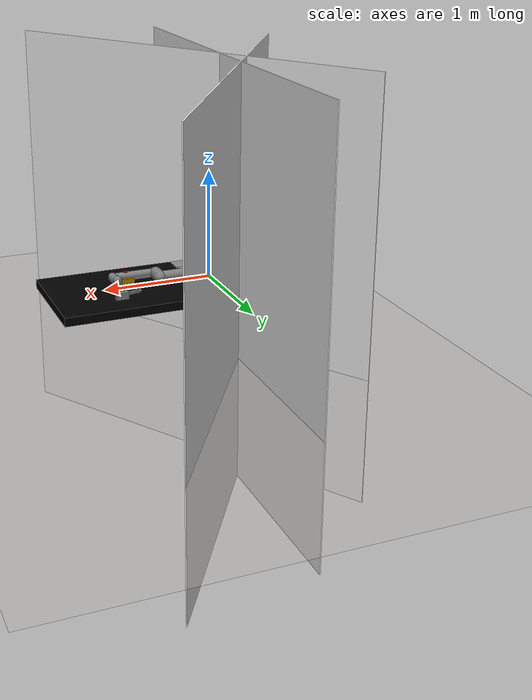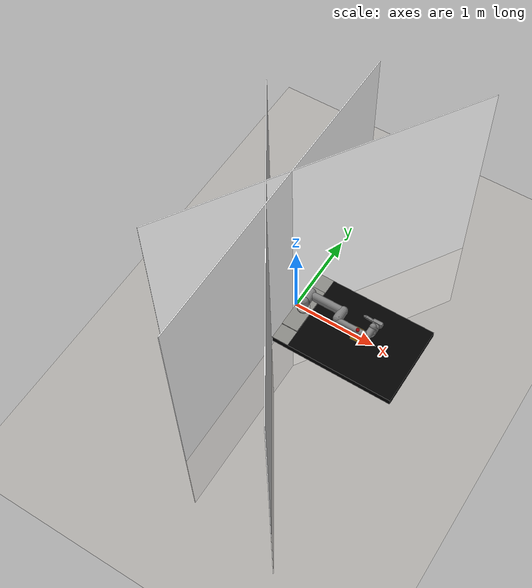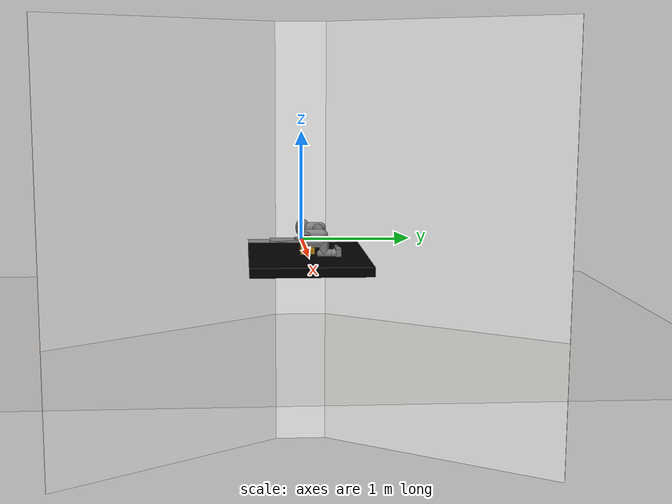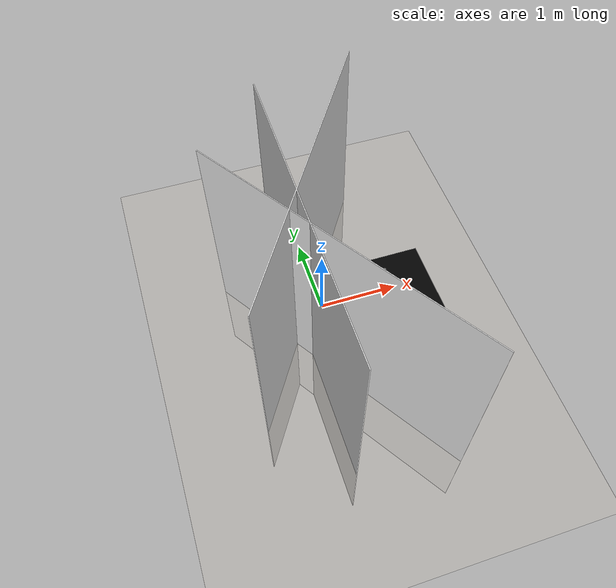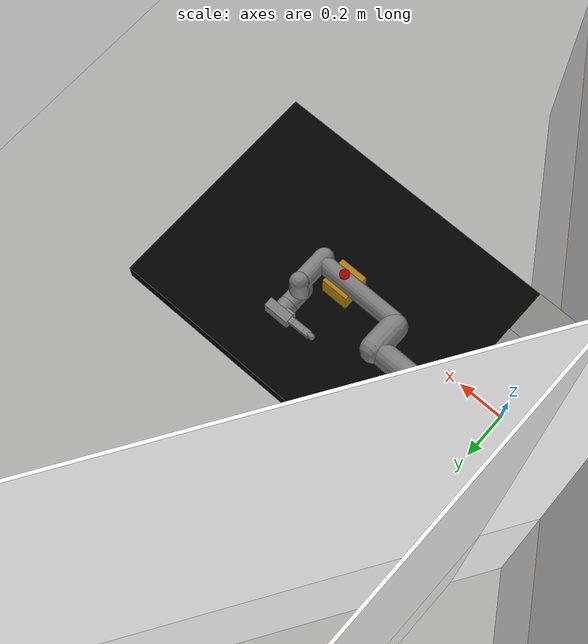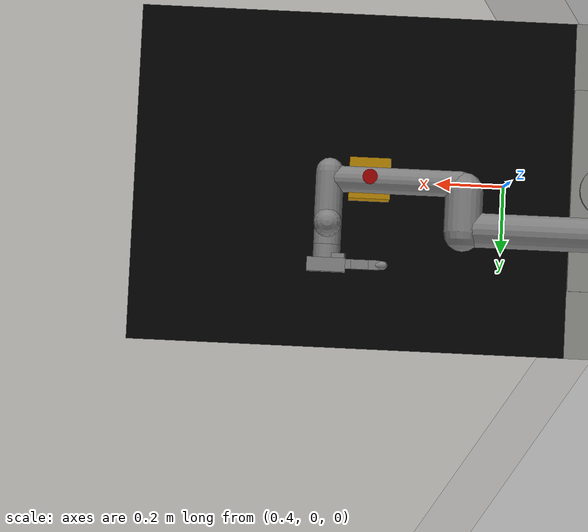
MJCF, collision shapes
<mujoco model="ur5e_button_scene">

  <include file="basic_scene.xml"/>
  <include file="ur5e_with_dex.xml"/>

  <default>
    <default class="buttonbox_base">
        <joint armature="0.001" damping="2" limited="true"/>
        <position ctrllimited="true" ctrlrange="0 1.57"/>
    </default>
  </default>

  <asset>
    <material name="btn_red" rgba=".6 0 0 1" shininess="1" reflectance=".7" specular=".5"/>
    <material name="btn_yellow" rgba=".7 .5 0 1" shininess="1" reflectance=".7" specular=".5"/>
  </asset>

  <worldbody>

    <body childclass="buttonbox_base" name="buttonbox" pos="0.8 0 0.058" euler="-1.57 0 0">

      <geom material="btn_yellow" pos="0 0.006 0.036" size="0.06 0.051 0.024" type="box"/>
      <geom material="btn_yellow" pos="0 0.006 -0.036" size="0.06 0.051 0.024" type="box"/>
      <geom material="btn_yellow" pos="-0.0365 0.006 0" size="0.0235 0.051 0.012" type="box"/>
      <geom material="btn_yellow" pos="0.0365 0.006 0" size="0.0235 0.051 0.012" type="box"/>

      <site name="hover_site" pos="0 -0.18 0" size="0.02" rgba="0 1 0 0"/>
      <site name="btn_site" pos="0 -0.055 0" size="0.02" rgba="0 0 1 0"/>

      <body childclass="buttonbox_base" name="button">
        <inertial pos="0 -0.09675 0" mass=".01" diaginertia="0.001 0.001 0.001"/>
        <joint name="btnbox_joint" pos="0 0 0" axis="0 -1 0" type="slide" springref=".5" limited="true" stiffness="0.5" range="-0.03 0" damping="0.5"/>

        <geom material="btn_red" euler="1.57 0 0" pos="0 -0.064 0" size="0.0105 0.0235" type="cylinder"/>
        <geom material="btn_red" euler="1.57 0 0" pos="0 -0.0915 0" size="0.0215 0.0055" type="cylinder"/>

        <site name="pushdown_site" pos="0 -0.09 0" size="0.02" rgba="0 1 0 0"/>
      </body>

    </body>

  </worldbody>

</mujoco>

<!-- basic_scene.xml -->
<mujoco model="ur5e_scene">

  <compiler angle="radian" meshdir="assets" texturedir="assets" autolimits="true"/>

  <statistic center="0.3 0 0.4" extent="0.8"/>

  <visual>
    <headlight diffuse="0.6 0.6 0.6"  ambient="0.1 0.1 0.1" specular="0 0 0"/>
    <rgba haze="0.15 0.25 0.35 1"/>
    <global azimuth="120" elevation="-20"/>
  </visual>

  <default>
    <default class="visual_scene">
      <geom contype="0" conaffinity="0"/>
    </default>
  </default>

  <asset>
    <mesh name="table_top" scale="1.25 1.67 10" file="table_top.STL"/>
    <mesh name="table_leg" scale="1.25 1.67 1" file="table_leg.STL"/>
    <texture type="2d" name="floor" file="floor.png" />
    <texture type="skybox" builtin="gradient" rgb1="0.3 0.5 0.7" rgb2="0 0 0" width="512"
        height="3072"/>
    <texture type="2d" name="groundplane" builtin="checker" mark="edge" rgb1="0.2 0.3 0.4"
        rgb2="0.1 0.2 0.3" markrgb="0.8 0.8 0.8" width="300" height="300"/>
    <texture name="grid" type="2d" builtin="checker" rgb1=".1 .2 .3" rgb2=".2 .3 .4"
        width="300" height="300" mark="edge" markrgb=".2 .3 .4"/>
    <material name="groundplane" texture="groundplane" texuniform="true" texrepeat="5 5"
        reflectance="0.2"/>
    <material name="grid" texture="grid" texrepeat="1 1" texuniform="true" reflectance=".2"/>
    <material name="table" rgba="0.12 0.3 0.26 1"/>
    <material name="floor" texture="floor"/>
    <material name="seat_mat" rgba="0.533 0.529 0.514 1" specular="0.5" shininess="0.25"/>
    <material name="wall" rgba="1 1 1 1"/>
  </asset>

  <worldbody>
    <light pos="0.6 -0.1 1.5" dir="0 0.3 -1" directional="true" castshadow="false"/>

    <geom name="floor" size="0 0 0.05" pos="0 0 -0.75" type="plane" material="floor"/>

    <geom name="wall1" size="2 2 0.005" pos="-0.2 0 0" type="box" quat="0 1 0 1" material="wall"/>
    <geom name="wall2" size="2 2 0.005" pos="0 0.55 0" type="box" euler="1.57 1.0 0" material="wall"/>
    <geom name="wall3" size="2 2 0.005" pos="0 -0.55 0" type="box" euler="1.57 -1.0 0" material="wall"/>

    <!-- The desktop plane is at z=0, back edge is at x=0 -->
    <body name="table" pos="0.75 0 -0.04">
      <geom name="table_top_col" type="box" pos="0 0 0" size="0.75 0.5 0.04" rgba="0 0 0 0"/>
      <geom type="mesh" mesh="table_top" pos="0 0 -0.36" material="table" class="visual_scene"/>
      <geom type="mesh" mesh="table_leg" rgba="0.533 0.529 0.514 1" class="visual_scene"/>
      <body name='seat' pos="-0.65 0 0.04">
        <geom type="box" pos="0 0 0.0075" size="0.1 0.3 0.0075" material="seat_mat" class="visual_scene"/>
        <geom type="box" pos="0 0 0.001" size="0.1 0.5 0.001" material="seat_mat" class="visual_scene"/>
        <geom type="cylinder" pos="0 0 0.0225" size="0.075 0.0075" material="seat_mat" class="visual_scene"/>
      </body>

    </body>

    <body name="viewpoint" pos="0.6 0.0 0.2">
    </body>

    <camera name="fix_cam" mode="targetbody" target="viewpoint" pos="1.9 0 0.75" fovy="42"/>
    <camera name="track_cam" mode="targetbody" target="viewpoint" pos="1.9 0 0.75" fovy="42"/>

  </worldbody>

</mujoco>

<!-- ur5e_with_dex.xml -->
<mujoco model="ur5e">
  <compiler angle="radian" meshdir="assets" autolimits="true"/>

  <option cone="elliptic" impratio="10"/>

  <default>
    <default class="ur5e">
      <joint axis="0 1 0" range="-6.28319 6.28319"/>
      <position ctrlrange="-6.28319 6.28319"/>

      <default class="visual_ur5e">
        <geom type="mesh" contype="0" conaffinity="0" group="2"/>
      </default>
      <default class="collision_ur5e">
        <geom type="capsule" group="3"/>
        <default class="eef_collision">
          <geom type="cylinder"/>
        </default>
      </default>
      <site size="0.001" rgba="0.5 0.5 0.5 0.3" group="4"/>

      <!-- Reference:
        https://www.universal-robots.com/articles/ur/robot-care-maintenance/max-joint-torques/ -->
      <default class="size3">
        <joint armature="0.1" damping="200"/>
        <position kp="3500" forcerange="-150 150"/>
        <default class="size3_limited">
          <joint range="-3.1415 3.1415"/>
          <position ctrlrange="-3.1415 3.1415"/>
        </default>
      </default>
      <default class="size1">
        <joint armature="0.1" damping="15"/>
        <position kp="3000" forcerange="-28 28"/>
      </default>
    </default>

    <!-- dex -->
    <default class="allegro_left">
      <joint axis="0 1 0" damping=".1"/>
      <position kp="1"/>
      <geom density="800"/>

      <default class="visual">
        <geom type="mesh" contype="0" conaffinity="0" group="2" material="black"/>
        <default class="palm_visual">
          <geom mesh="base_link"/>
        </default>
        <default class="base_visual">
          <geom mesh="link_0.0"/>
        </default>
        <default class="proximal_visual">
          <geom mesh="link_1.0"/>
        </default>
        <default class="medial_visual">
          <geom mesh="link_2.0"/>
        </default>
        <default class="distal_visual">
          <geom mesh="link_3.0"/>
        </default>
        <default class="fingertip_visual">
          <geom pos="0 0 0.0267" material="white" mesh="link_3.0_tip"/>
        </default>
        <default class="thumbtip_visual">
          <geom pos="0 0 0.0423" material="white" mesh="link_15.0_tip"/>
        </default>
      </default>

      <default class="collision">
        <geom group="3" type="box" mass="0"/>
        <default class="palm_collision">
          <geom size="0.0204 0.0565 0.0475" pos="-0.0093 0 -0.0475"/>
        </default>
        <default class="base_collision">
          <geom size="0.0098 0.01375 0.0082" pos="0 0 0.0082"/>
          <default class="thumb_base_collision">
            <geom size="0.0179 0.017 0.02275" pos="-0.0179 0.009 0.0145"/>
          </default>
        </default>
        <default class="proximal_collision">
          <geom size="0.0098 0.01375 0.027" pos="0 0 0.027"/>
          <default class="thumb_proximal_collision">
            <geom size="0.0098 0.01375 0.00885" pos="0 0 0.00885"/>
          </default>
        </default>
        <default class="medial_collision">
          <geom size="0.0098 0.01375 0.0192" pos="0 0 0.0192"/>
          <default class="thumb_medial_collision">
            <geom size="0.0098 0.01375 0.0257" pos="0 0 0.0257"/>
          </default>
        </default>
        <default class="distal_collision">
          <geom size="0.0098 0.01375 0.008" pos="0 0 0.008"/>
          <default class="thumb_distal_collision">
            <geom size="0.0098 0.01375 0.0157" pos="0 0 0.0157"/>
          </default>
        </default>
        <default class="fingertip_collision">
          <geom type="capsule" size="0.012 0.01" pos="0 0 0.019"/>
          <default class="thumbtip_collision">
            <geom type="capsule" size="0.012 0.008" pos="0 0 0.035"/>
          </default>
        </default>
      </default>

      <default class="base">
        <joint axis="0 0 1" range="-0.47 0.47"/>
        <position ctrlrange="-0.47 0.47"/>
      </default>
      <default class="proximal">
        <joint range="-0.196 1.61"/>
        <position ctrlrange="-0.196 1.61"/>
      </default>
      <default class="medial">
        <joint range="-0.174 1.709"/>
        <position ctrlrange="-0.174 1.709"/>
      </default>
      <default class="distal">
        <joint range="-0.227 1.618"/>
        <position ctrlrange="-0.227 1.618"/>
      </default>
      <default class="thumb_base">
        <joint axis="1 0 0" range="0.263 1.396"/>
        <position ctrlrange="0.263 1.396"/>
      </default>
      <default class="thumb_proximal">
        <joint axis="0 0 -1" range="-0.105 1.163"/>
        <position ctrlrange="-0.105 1.163"/>
      </default>
      <default class="thumb_medial">
        <joint range="-0.189 1.644"/>
        <position ctrlrange="-0.189 1.644"/>
      </default>
      <default class="thumb_distal">
        <joint range="-0.162 1.719"/>
        <position ctrlrange="-0.162 1.719"/>
      </default>
    </default>

  </default>

  <asset>
    <material name="black_ur5e" specular="0.5" shininess="0.25" rgba="0.033 0.033 0.033 1"/>
    <material name="jointgray" specular="0.5" shininess="0.25" rgba="0.278 0.278 0.278 1"/>
    <material name="linkgray" specular="0.5" shininess="0.25" rgba="0.82 0.82 0.82 1"/>
    <material name="urblue" specular="0.5" shininess="0.25" rgba="0.49 0.678 0.8 1"/>
    <!-- dex -->
    <material name="black" rgba="0.2 0.2 0.2 1"/>
    <material name="white" rgba="0.9 0.9 0.9 1"/>

    <mesh file="base_0.obj"/>
    <mesh file="base_1.obj"/>
    <mesh file="shoulder_0.obj"/>
    <mesh file="shoulder_1.obj"/>
    <mesh file="shoulder_2.obj"/>
    <mesh file="upperarm_0.obj"/>
    <mesh file="upperarm_1.obj"/>
    <mesh file="upperarm_2.obj"/>
    <mesh file="upperarm_3.obj"/>
    <mesh file="forearm_0.obj"/>
    <mesh file="forearm_1.obj"/>
    <mesh file="forearm_2.obj"/>
    <mesh file="forearm_3.obj"/>
    <mesh file="wrist1_0.obj"/>
    <mesh file="wrist1_1.obj"/>
    <mesh file="wrist1_2.obj"/>
    <mesh file="wrist2_0.obj"/>
    <mesh file="wrist2_1.obj"/>
    <mesh file="wrist2_2.obj"/>
    <mesh file="wrist3.obj"/>
    <!-- dex -->
    <mesh file="base_link_left.stl"/>
    <mesh file="link_0.0.stl"/>
    <mesh file="link_1.0.stl"/>
    <mesh file="link_2.0.stl"/>
    <mesh file="link_3.0.stl"/>
    <mesh file="link_3.0_tip.stl"/>
    <mesh file="link_12.0_left.stl"/>
    <mesh file="link_13.0.stl"/>
    <mesh file="link_14.0.stl"/>
    <mesh file="link_15.0.stl"/>
    <mesh file="link_15.0_tip.stl"/>
  </asset>

  <worldbody>
    <body name="base_ur5e" quat="0 0 0 0" childclass="ur5e" pos="0.1 0 -0.05" gravcomp="1">
      <inertial mass="4.0" pos="0 0 0" diaginertia="0.00443333156 0.00443333156 0.0072"/>
      <geom mesh="base_0" material="black_ur5e" class="visual_ur5e"/>
      <body name="shoulder_link" pos="0 0 0.163" gravcomp="1">
        <inertial mass="3.7" pos="0 0 0" diaginertia="0.0102675 0.0102675 0.00666"/>
        <joint name="shoulder_pan_joint" class="size3" axis="0 0 1"/>
        <geom mesh="shoulder_0" material="urblue" class="visual_ur5e"/>
        <geom mesh="shoulder_1" material="black_ur5e" class="visual_ur5e"/>
        <geom mesh="shoulder_2" material="jointgray" class="visual_ur5e"/>
        <geom class="collision_ur5e" size="0.06 0.02" pos="0 0 0.01"/>
        <body name="upper_arm_link" pos="0 0.138 0" quat="1 0 1 0" gravcomp="1">
          <inertial mass="8.393" pos="0 0 0.2125" diaginertia="0.133886 0.133886 0.0151074"/>
          <joint name="shoulder_lift_joint" class="size3"/>
          <geom mesh="upperarm_0" material="linkgray" class="visual_ur5e"/>
          <geom mesh="upperarm_1" material="black_ur5e" class="visual_ur5e"/>
          <geom mesh="upperarm_2" material="jointgray" class="visual_ur5e"/>
          <geom mesh="upperarm_3" material="urblue" class="visual_ur5e"/>
          <geom class="collision_ur5e" pos="0 -0.04 0" quat="1 1 0 0" size="0.06 0.06"/>
          <geom class="collision_ur5e" size="0.05 0.2" pos="0 0 0.2"/>
          <body name="forearm_link" pos="0 -0.131 0.425" gravcomp="1">
            <inertial mass="2.275" pos="0 0 0.196" diaginertia="0.0311796 0.0311796 0.004095"/>
            <joint name="elbow_joint" class="size3_limited"/>
            <geom mesh="forearm_0" material="urblue" class="visual_ur5e"/>
            <geom mesh="forearm_1" material="linkgray" class="visual_ur5e"/>
            <geom mesh="forearm_2" material="black_ur5e" class="visual_ur5e"/>
            <geom mesh="forearm_3" material="jointgray" class="visual_ur5e"/>
            <geom class="collision_ur5e" pos="0 0.08 0" quat="1 1 0 0" size="0.055 0.06"/>
            <geom class="collision_ur5e" size="0.038 0.19" pos="0 0 0.2"/>
            <body name="wrist_1_link" pos="0 0 0.392" quat="1 0 1 0" gravcomp="1">
              <inertial mass="1.219" pos="0 0.127 0" diaginertia="0.0025599 0.0025599 0.0021942"/>
              <joint name="wrist_1_joint" class="size1"/>
              <geom mesh="wrist1_0" material="black_ur5e" class="visual_ur5e"/>
              <geom mesh="wrist1_1" material="urblue" class="visual_ur5e"/>
              <geom mesh="wrist1_2" material="jointgray" class="visual_ur5e"/>
              <geom class="collision_ur5e" pos="0 0.05 0" quat="1 1 0 0" size="0.04 0.07"/>
              <body name="wrist_2_link" pos="0 0.127 0" gravcomp="1">
                <inertial mass="1.219" pos="0 0 0.1" diaginertia="0.0025599 0.0025599 0.0021942"/>
                <joint name="wrist_2_joint" axis="0 0 1" class="size1"/>
                <geom mesh="wrist2_0" material="black_ur5e" class="visual_ur5e"/>
                <geom mesh="wrist2_1" material="urblue" class="visual_ur5e"/>
                <geom mesh="wrist2_2" material="jointgray" class="visual_ur5e"/>
                <geom class="collision_ur5e" size="0.04 0.06" pos="0 0 0.04"/>
                <geom class="collision_ur5e" pos="0 0.02 0.1" quat="1 1 0 0" size="0.04 0.04"/>
                <body name="wrist_3_link" pos="0 0 0.1" gravcomp="1">
                  <inertial mass="0.1889" pos="0 0.0771683 0" quat="1 0 0 1"
                      diaginertia="0.000132134 9.90863e-05 9.90863e-05"/>
                  <joint name="wrist_3_joint" class="size1"/>
                  <geom material="linkgray" mesh="wrist3" class="visual_ur5e"/>
                  <geom class="eef_collision" pos="0 0.08 0" quat="1 1 0 0" size="0.04 0.02"/>
                  <site name="attachment_site" pos="0 0.1 0" quat="-1 1 0 0"/>

                  <!-- Dexterous right hand Allegro -->
                  <!-- quat="0 1 0 1" -->
                  <body name="palm" pos="0 0.13 0.045" quat="1 0 0 1" childclass="allegro_left" gravcomp="1">
                    <site name="tcp_site" type="box" pos="0.04 0 -0.02" size="0.01 0.02 0.01" rgba="1 0 0 0"/>
                    <body name="tcp_center" pos="0.04 0 -0.02"/>
                    <geom quat="1 -1 0 0" class="palm_visual" mesh="base_link_left"/>
                    <geom class="palm_collision"/>
                    <!-- Ring finger -->
                    <body name="rf_base" pos="0 0.0435 -0.001542" quat="0.999048 -0.0436194 0 0" gravcomp="1">
                      <joint name="rfj0" class="base"/>
                      <geom class="base_visual"/>
                      <geom class="base_collision"/>
                      <body name="rf_proximal" pos="0 0 0.0164" gravcomp="1">
                        <joint name="rfj1" class="proximal"/>
                        <geom class="proximal_visual"/>
                        <geom class="proximal_collision"/>
                        <body name="rf_medial" pos="0 0 0.054" gravcomp="1">
                          <joint name="rfj2" class="medial"/>
                          <geom class="medial_visual"/>
                          <geom class="medial_collision"/>
                          <body name="rf_distal" pos="0 0 0.0384" gravcomp="1">
                            <joint name="rfj3" class="distal"/>
                            <geom class="distal_visual"/>
                            <geom class="distal_collision"/>
                            <body name="rf_tip" gravcomp="1">
                              <geom class="fingertip_visual"/>
                              <geom class="fingertip_collision"/>
                            </body>
                          </body>
                        </body>
                      </body>
                    </body>
                    <!-- Middle finger -->
                    <body name="mf_base" pos="0 0 0.0007" gravcomp="1">
                      <joint name="mfj0" class="base"/>
                      <geom class="base_visual"/>
                      <geom class="base_collision"/>
                      <body name="mf_proximal" pos="0 0 0.0164" gravcomp="1">
                        <joint name="mfj1" class="proximal"/>
                        <geom class="proximal_visual"/>
                        <geom class="proximal_collision"/>
                        <body name="mf_medial" pos="0 0 0.054" gravcomp="1">
                          <joint name="mfj2" class="medial"/>
                          <geom class="medial_visual"/>
                          <geom class="medial_collision"/>
                          <body name="mf_distal" pos="0 0 0.0384" gravcomp="1">
                            <joint name="mfj3" class="distal"/>
                            <geom class="distal_visual"/>
                            <geom class="distal_collision"/>
                            <body name="mf_tip" gravcomp="1">
                              <geom class="fingertip_visual"/>
                              <geom class="fingertip_collision"/>
                            </body>
                          </body>
                        </body>
                      </body>
                    </body>
                    <!-- First finger -->
                    <body name="ff_base" pos="0 -0.0435 -0.001542" quat="0.999048 0.0436194 0 0" gravcomp="1">
                      <joint name="ffj0" class="base"/>
                      <geom class="base_visual"/>
                      <geom class="base_collision"/>
                      <body name="ff_proximal" pos="0 0 0.0164" gravcomp="1">
                        <joint name="ffj1" class="proximal"/>
                        <geom class="proximal_visual"/>
                        <geom class="proximal_collision"/>
                        <body name="ff_medial" pos="0 0 0.054" gravcomp="1">
                          <joint name="ffj2" class="medial"/>
                          <geom class="medial_visual"/>
                          <geom class="medial_collision"/>
                          <body name="ff_distal" pos="0 0 0.0384" gravcomp="1">
                            <joint name="ffj3" class="distal"/>
                            <geom class="distal_visual"/>
                            <geom class="distal_collision"/>
                            <body name="ff_tip" gravcomp="1">
                              <geom class="fingertip_visual"/>
                              <geom class="fingertip_collision"/>
                            </body>
                          </body>
                        </body>
                      </body>
                    </body>
                    <!-- Thumb -->
                    <body name="th_base" pos="-0.0182 -0.019333 -0.045987" quat="0.477714 0.521334 -0.521334 0.477714" gravcomp="1">
                      <joint name="thj0" class="thumb_base"/>
                      <geom quat="0 1 0 0" class="visual" mesh="link_12.0_left"/>
                      <geom class="thumb_base_collision"/>
                      <body name="th_proximal" pos="-0.027 -0.005 0.0399" gravcomp="1">
                        <joint name="thj1" class="thumb_proximal"/>
                        <geom class="visual" mesh="link_13.0"/>
                        <geom class="thumb_proximal_collision"/>
                        <body name="th_medial" pos="0 0 0.0177" gravcomp="1">
                          <joint name="thj2" class="thumb_medial"/>
                          <geom class="visual" mesh="link_14.0"/>
                          <geom class="thumb_medial_collision"/>
                          <body name="th_distal" pos="0 0 0.0514" gravcomp="1">
                            <joint name="thj3" class="thumb_distal"/>
                            <geom class="visual" mesh="link_15.0"/>
                            <geom class="thumb_distal_collision"/>
                            <body name="th_tip" gravcomp="1">
                              <geom class="thumbtip_visual"/>
                              <geom class="thumbtip_collision"/>
                            </body>
                          </body>
                        </body>
                      </body>
                    </body>
                  </body>

                </body>
              </body>
            </body>
          </body>
        </body>
      </body>
    </body>

  </worldbody>

  <!-- dex -->
  <contact>
    <exclude body1="palm" body2="ff_base"/>
    <exclude body1="palm" body2="mf_base"/>
    <exclude body1="palm" body2="rf_base"/>
    <exclude body1="palm" body2="th_base"/>
    <exclude body1="palm" body2="th_proximal"/>
  </contact>

</mujoco>
